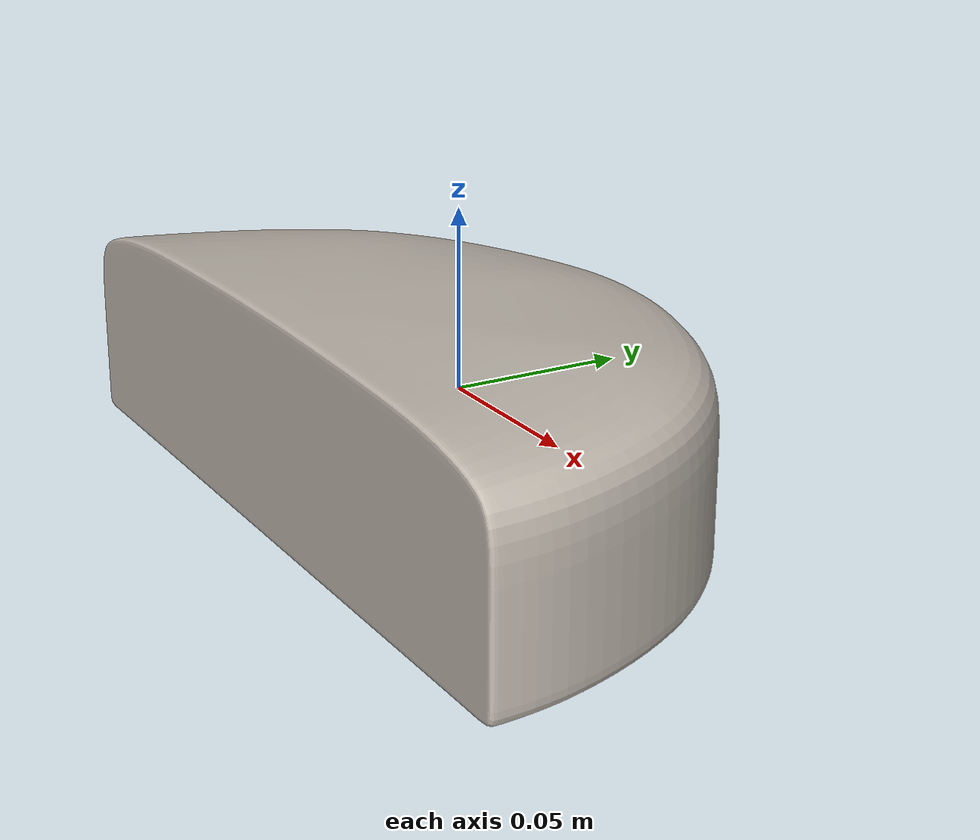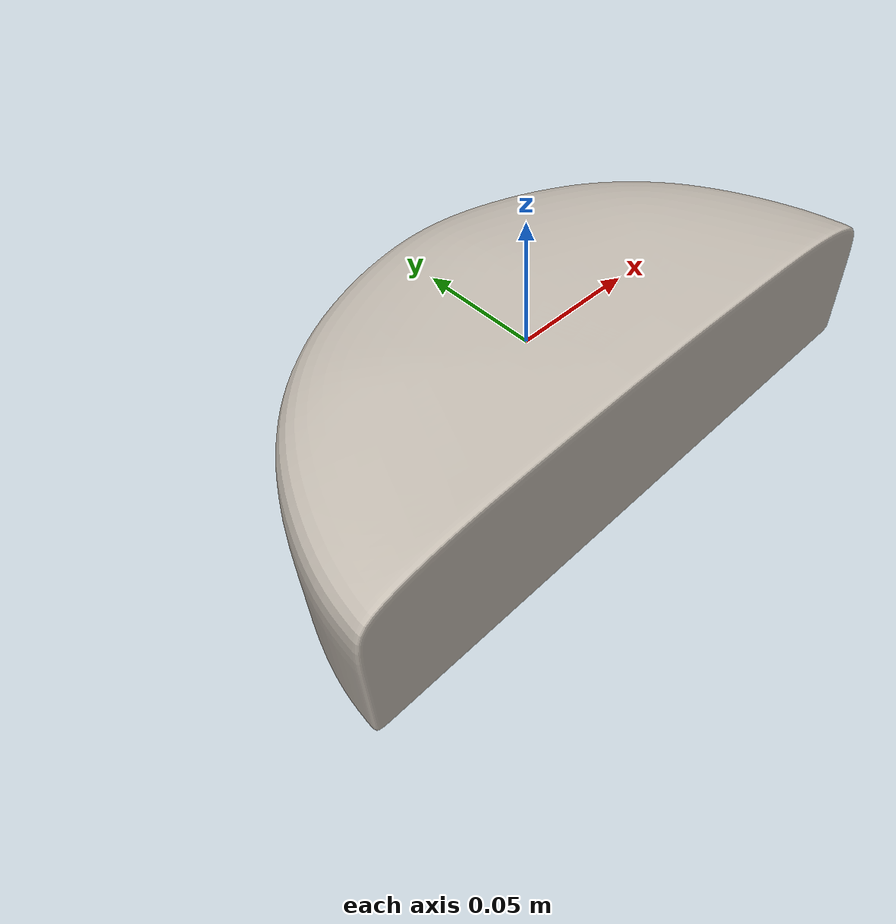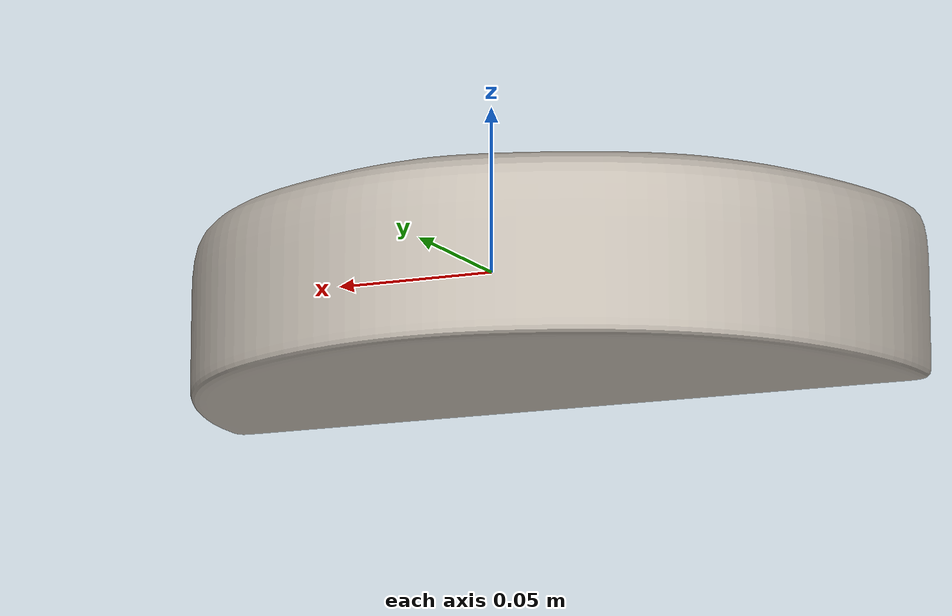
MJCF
<?xml version="1.0" ?>
<mujoco model="cheese_3">
	<compiler meshdir="cheese_3/meshes" texturedir="cheese_3/textures" angle="radian" autolimits="true" balanceinertia="true" boundmass="0.000001" boundinertia="0.000001"/>
	<default>
		<default class="visual">
			<geom contype="0" conaffinity="0"/>
		</default>
		<default class="collision">
			<geom rgba="1.0 0.0 0.0 0.0"/>
		</default>
	</default>
	<asset>
		<mesh name="Cheese3" file="obj/Cheese3.obj" scale="1.0 1.0 1.0"/>
		<mesh name="Cheese3_001" file="stl/Cheese3_001.stl" scale="1.0 1.0 1.0"/>
		<material name="M_Cheese3" texture="T_Cheese3"/>
		<texture name="T_Cheese3" type="2d" file="T_Cheese3.png"/>
	</asset>
	<worldbody>
		<body name="cheese_3" pos="0.0 0.0 0.0" quat="1.0 0.0 0.0 0.0">
			<inertial mass="1.6199936866760254" pos="-2.4017799304942855e-08 -0.009999449364840984 -0.0020021244417876005" quat="0.9999849796295166 -0.005476128775626421 3.099311385312831e-08 1.9889981328624629e-10" diaginertia="0.0021207027602940798 0.005720313638448715 0.006894052494317293"/>
			<geom name="Cheese3" type="mesh" pos="0.0 0.0 0.0" quat="1.0 0.0 0.0 0.0" mesh="Cheese3" material="M_Cheese3" class="visual"/>
			<geom name="Cheese3_001" type="mesh" pos="0.0 0.0 0.0" quat="1.0 0.0 0.0 0.0" mesh="Cheese3_001" class="collision"/>
		</body>
	</worldbody>
	<equality/>
</mujoco>
